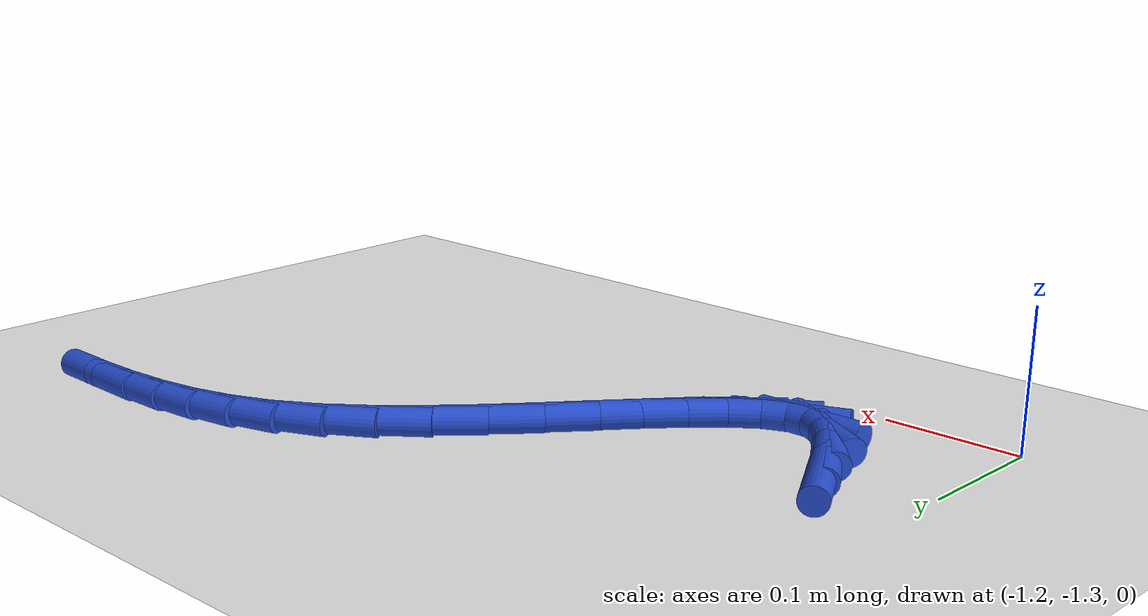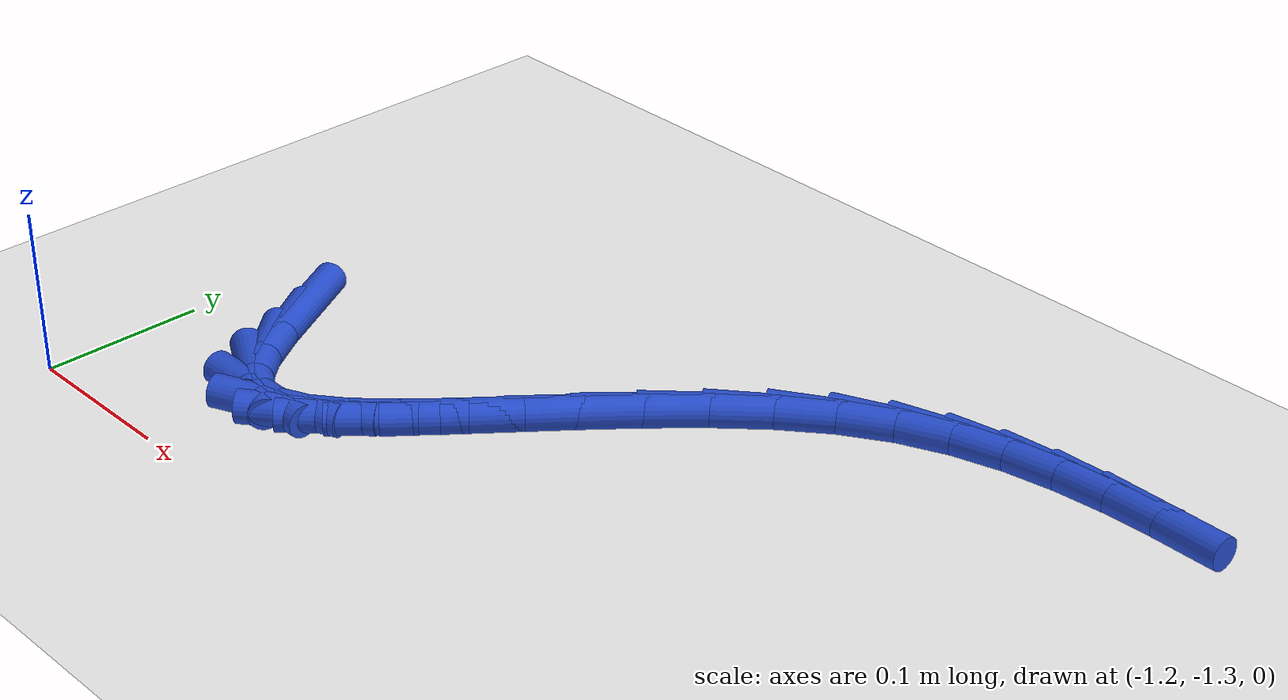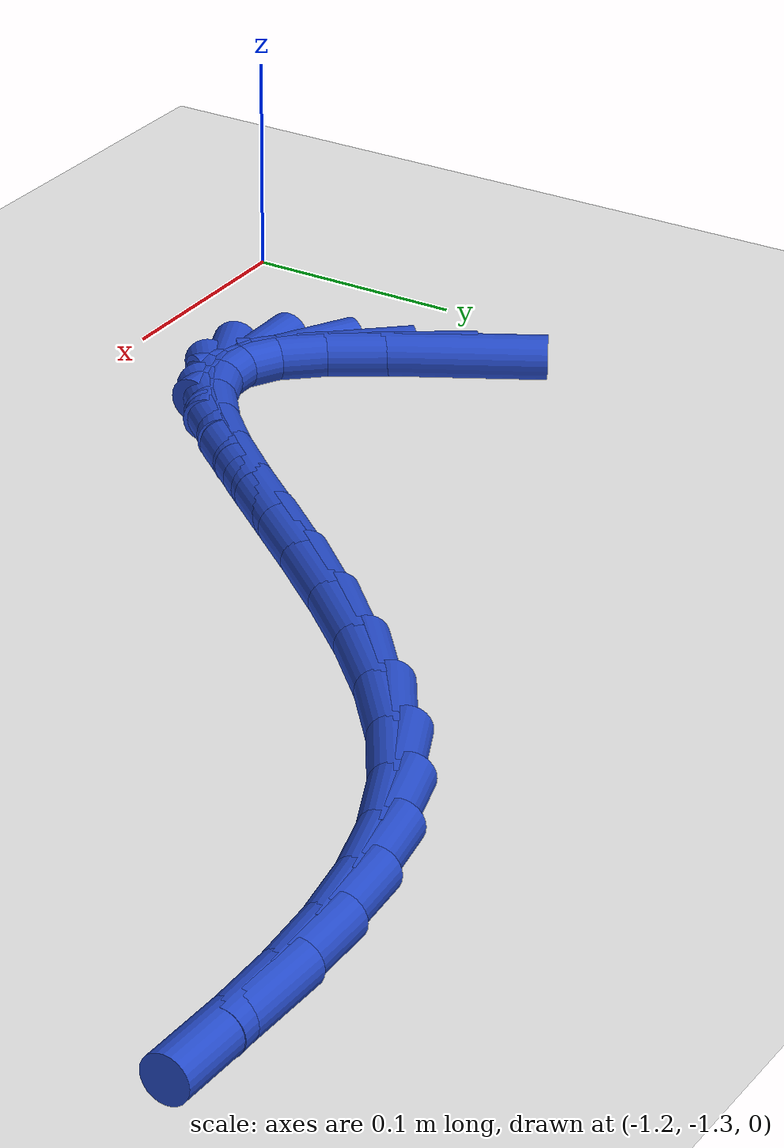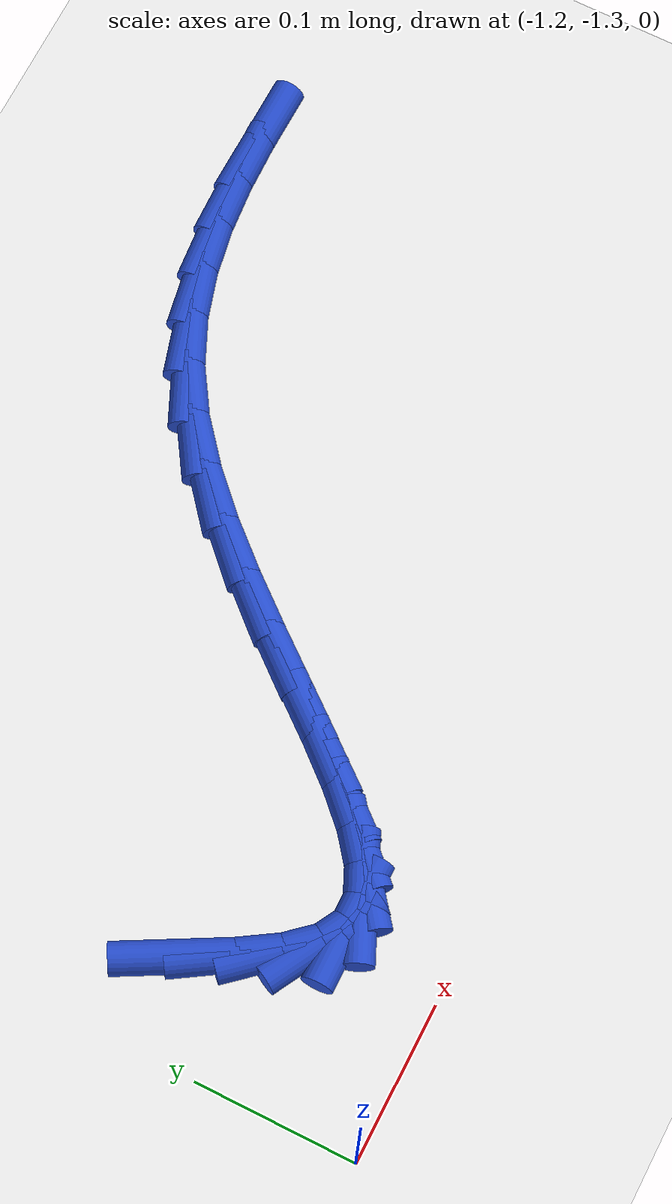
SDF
<sdf version="1.6">
 <world name="default">
  <model name="ground_plane">
   <static>1</static>
   <link name="link">
    <collision name="collision">
     <geometry><plane><normal>0 0 1</normal><size>100 100</size></plane></geometry>
     <surface><friction><ode><mu>100</mu><mu2>50</mu2></ode></friction></surface>
    </collision>
    <visual name="visual">
     <cast_shadows>0</cast_shadows>
     <geometry><plane><normal>0 0 1</normal><size>100 100</size></plane></geometry>
     <material>
      <script><uri>file://media/materials/scripts/gazebo.material</uri><name>Gazebo/WhiteGlow</name></script>
     </material>
    </visual>
   </link>
  </model>
  <model name="line">
   <link name="link_193">
    <pose>-1.1429890617071052 -1.16061340525731 0.01 0 1.57 -1.0657319433157604</pose>
    <collision name="collision">
     <geometry><cylinder><radius>0.01</radius><length>0.08</length></cylinder></geometry>
    </collision>
    <visual name="visual">
     <material>
      <script><name>Gazebo/Blue</name><uri>file://media/materials/scripts/gazebo.material</uri></script>
     </material>
     <geometry><cylinder><radius>0.01</radius><length>0.08</length></cylinder></geometry>
    </visual>
   </link>
   <link name="link_194">
    <pose>-1.1279853823475854 -1.1877499056428367 0.01 0 1.57 -1.000812917307462</pose>
    <collision name="collision">
     <geometry><cylinder><radius>0.01</radius><length>0.08</length></cylinder></geometry>
    </collision>
    <visual name="visual">
     <material>
      <script><name>Gazebo/Blue</name><uri>file://media/materials/scripts/gazebo.material</uri></script>
     </material>
     <geometry><cylinder><radius>0.01</radius><length>0.08</length></cylinder></geometry>
    </visual>
   </link>
   <link name="link_195">
    <pose>-1.1132590144612546 -1.2107259247175597 0.01 0 1.57 -0.8426996457259167</pose>
    <collision name="collision">
     <geometry><cylinder><radius>0.01</radius><length>0.08</length></cylinder></geometry>
    </collision>
    <visual name="visual">
     <material>
      <script><name>Gazebo/Blue</name><uri>file://media/materials/scripts/gazebo.material</uri></script>
     </material>
     <geometry><cylinder><radius>0.01</radius><length>0.08</length></cylinder></geometry>
    </visual>
   </link>
   <link name="link_196">
    <pose>-1.0983686118963143 -1.22742864398564 0.01 0 1.57 -0.497548517801257</pose>
    <collision name="collision">
     <geometry><cylinder><radius>0.01</radius><length>0.08</length></cylinder></geometry>
    </collision>
    <visual name="visual">
     <material>
      <script><name>Gazebo/Blue</name><uri>file://media/materials/scripts/gazebo.material</uri></script>
     </material>
     <geometry><cylinder><radius>0.01</radius><length>0.08</length></cylinder></geometry>
    </visual>
   </link>
   <link name="link_197">
    <pose>-1.0828841029287282 -1.2358386465889857 0.01 0 1.57 0.013273784595244706</pose>
    <collision name="collision">
     <geometry><cylinder><radius>0.01</radius><length>0.08</length></cylinder></geometry>
    </collision>
    <visual name="visual">
     <material>
      <script><name>Gazebo/Blue</name><uri>file://media/materials/scripts/gazebo.material</uri></script>
     </material>
     <geometry><cylinder><radius>0.01</radius><length>0.08</length></cylinder></geometry>
    </visual>
   </link>
   <link name="link_198">
    <pose>-1.0665788935214402 -1.235622202039353 0.01 0 1.57 0.42210818053192</pose>
    <collision name="collision">
     <geometry><cylinder><radius>0.01</radius><length>0.08</length></cylinder></geometry>
    </collision>
    <visual name="visual">
     <material>
      <script><name>Gazebo/Blue</name><uri>file://media/materials/scripts/gazebo.material</uri></script>
     </material>
     <geometry><cylinder><radius>0.01</radius><length>0.08</length></cylinder></geometry>
    </visual>
   </link>
   <link name="link_199">
    <pose>-1.0494029694102254 -1.227908433690976 0.01 0 1.57 0.6597606124652435</pose>
    <collision name="collision">
     <geometry><cylinder><radius>0.01</radius><length>0.08</length></cylinder></geometry>
    </collision>
    <visual name="visual">
     <material>
      <script><name>Gazebo/Blue</name><uri>file://media/materials/scripts/gazebo.material</uri></script>
     </material>
     <geometry><cylinder><radius>0.01</radius><length>0.08</length></cylinder></geometry>
    </visual>
   </link>
   <link name="link_200">
    <pose>-1.0313121772524165 -1.213875018996232 0.01 0 1.57 0.788683158620173</pose>
    <collision name="collision">
     <geometry><cylinder><radius>0.01</radius><length>0.08</length></cylinder></geometry>
    </collision>
    <visual name="visual">
     <material>
      <script><name>Gazebo/Blue</name><uri>file://media/materials/scripts/gazebo.material</uri></script>
     </material>
     <geometry><cylinder><radius>0.01</radius><length>0.08</length></cylinder></geometry>
    </visual>
   </link>
   <link name="link_201">
    <pose>-1.0122623637053465 -1.1946996354074992 0.01 0 1.57 0.856740099656835</pose>
    <collision name="collision">
     <geometry><cylinder><radius>0.01</radius><length>0.08</length></cylinder></geometry>
    </collision>
    <visual name="visual">
     <material>
      <script><name>Gazebo/Blue</name><uri>file://media/materials/scripts/gazebo.material</uri></script>
     </material>
     <geometry><cylinder><radius>0.01</radius><length>0.08</length></cylinder></geometry>
    </visual>
   </link>
   <link name="link_202">
    <pose>-0.9922093754263478 -1.1715599603771552 0.01 0 1.57 0.8876623520143261</pose>
    <collision name="collision">
     <geometry><cylinder><radius>0.01</radius><length>0.08</length></cylinder></geometry>
    </collision>
    <visual name="visual">
     <material>
      <script><name>Gazebo/Blue</name><uri>file://media/materials/scripts/gazebo.material</uri></script>
     </material>
     <geometry><cylinder><radius>0.01</radius><length>0.08</length></cylinder></geometry>
    </visual>
   </link>
   <link name="link_203">
    <pose>-0.9711090590727537 -1.1456336713575783 0.01 0 1.57 0.8924426347077464</pose>
    <collision name="collision">
     <geometry><cylinder><radius>0.01</radius><length>0.08</length></cylinder></geometry>
    </collision>
    <visual name="visual">
     <material>
      <script><name>Gazebo/Blue</name><uri>file://media/materials/scripts/gazebo.material</uri></script>
     </material>
     <geometry><cylinder><radius>0.01</radius><length>0.08</length></cylinder></geometry>
    </visual>
   </link>
   <link name="link_204">
    <pose>-0.9489172613018957 -1.1180984458011456 0.01 0 1.57 0.8755933698337915</pose>
    <collision name="collision">
     <geometry><cylinder><radius>0.01</radius><length>0.08</length></cylinder></geometry>
    </collision>
    <visual name="visual">
     <material>
      <script><name>Gazebo/Blue</name><uri>file://media/materials/scripts/gazebo.material</uri></script>
     </material>
     <geometry><cylinder><radius>0.01</radius><length>0.08</length></cylinder></geometry>
    </visual>
   </link>
   <link name="link_205">
    <pose>-0.925589828771108 -1.0901319611602356 0.01 0 1.57 0.837795315385814</pose>
    <collision name="collision">
     <geometry><cylinder><radius>0.01</radius><length>0.08</length></cylinder></geometry>
    </collision>
    <visual name="visual">
     <material>
      <script><name>Gazebo/Blue</name><uri>file://media/materials/scripts/gazebo.material</uri></script>
     </material>
     <geometry><cylinder><radius>0.01</radius><length>0.08</length></cylinder></geometry>
    </visual>
   </link>
   <link name="link_206">
    <pose>-0.901082608137723 -1.0629118948872271 0.01 0 1.57 0.7768697383576941</pose>
    <collision name="collision">
     <geometry><cylinder><radius>0.01</radius><length>0.08</length></cylinder></geometry>
    </collision>
    <visual name="visual">
     <material>
      <script><name>Gazebo/Blue</name><uri>file://media/materials/scripts/gazebo.material</uri></script>
     </material>
     <geometry><cylinder><radius>0.01</radius><length>0.08</length></cylinder></geometry>
    </visual>
   </link>
   <link name="link_207">
    <pose>-0.8753514460590731 -1.0376159244344967 0.01 0 1.57 0.6880302237239019</pose>
    <collision name="collision">
     <geometry><cylinder><radius>0.01</radius><length>0.08</length></cylinder></geometry>
    </collision>
    <visual name="visual">
     <material>
      <script><name>Gazebo/Blue</name><uri>file://media/materials/scripts/gazebo.material</uri></script>
     </material>
     <geometry><cylinder><radius>0.01</radius><length>0.08</length></cylinder></geometry>
    </visual>
   </link>
   <link name="link_208">
    <pose>-0.8483521891924914 -1.0154217272544228 0.01 0 1.57 0.5645151642309291</pose>
    <collision name="collision">
     <geometry><cylinder><radius>0.01</radius><length>0.08</length></cylinder></geometry>
    </collision>
    <visual name="visual">
     <material>
      <script><name>Gazebo/Blue</name><uri>file://media/materials/scripts/gazebo.material</uri></script>
     </material>
     <geometry><cylinder><radius>0.01</radius><length>0.08</length></cylinder></geometry>
    </visual>
   </link>
   <link name="link_209">
    <pose>-0.8200429527732189 -0.9974946950923241 0.01 0 1.57 0.4202300622547253</pose>
    <collision name="collision">
     <geometry><cylinder><radius>0.01</radius><length>0.08</length></cylinder></geometry>
    </collision>
    <visual name="visual">
     <material>
      <script><name>Gazebo/Blue</name><uri>file://media/materials/scripts/gazebo.material</uri></script>
     </material>
     <geometry><cylinder><radius>0.01</radius><length>0.08</length></cylinder></geometry>
    </visual>
   </link>
   <link name="link_210">
    <pose>-0.790511412865774 -0.984298570264257 0.01 0 1.57 0.2892992450537658</pose>
    <collision name="collision">
     <geometry><cylinder><radius>0.01</radius><length>0.08</length></cylinder></geometry>
    </collision>
    <visual name="visual">
     <material>
      <script><name>Gazebo/Blue</name><uri>file://media/materials/scripts/gazebo.material</uri></script>
     </material>
     <geometry><cylinder><radius>0.01</radius><length>0.08</length></cylinder></geometry>
    </visual>
   </link>
   <link name="link_211">
    <pose>-0.7600423843594475 -0.9752294703677568 0.01 0 1.57 0.17923166058953358</pose>
    <collision name="collision">
     <geometry><cylinder><radius>0.01</radius><length>0.08</length></cylinder></geometry>
    </collision>
    <visual name="visual">
     <material>
      <script><name>Gazebo/Blue</name><uri>file://media/materials/scripts/gazebo.material</uri></script>
     </material>
     <geometry><cylinder><radius>0.01</radius><length>0.08</length></cylinder></geometry>
    </visual>
   </link>
   <link name="link_212">
    <pose>-0.7289372173374918 -0.9695939650291808 0.01 0 1.57 0.09183211605686431</pose>
    <collision name="collision">
     <geometry><cylinder><radius>0.01</radius><length>0.08</length></cylinder></geometry>
    </collision>
    <visual name="visual">
     <material>
      <script><name>Gazebo/Blue</name><uri>file://media/materials/scripts/gazebo.material</uri></script>
     </material>
     <geometry><cylinder><radius>0.01</radius><length>0.08</length></cylinder></geometry>
    </visual>
   </link>
   <link name="link_213">
    <pose>-0.6974972618831592 -0.9666986238748869 0.01 0 1.57 0.026956158479227547</pose>
    <collision name="collision">
     <geometry><cylinder><radius>0.01</radius><length>0.08</length></cylinder></geometry>
    </collision>
    <visual name="visual">
     <material>
      <script><name>Gazebo/Blue</name><uri>file://media/materials/scripts/gazebo.material</uri></script>
     </material>
     <geometry><cylinder><radius>0.01</radius><length>0.08</length></cylinder></geometry>
    </visual>
   </link>
   <link name="link_214">
    <pose>-0.666023868079704 -0.9658500165312323 0.01 0 1.57 -0.01617190510450327</pose>
    <collision name="collision">
     <geometry><cylinder><radius>0.01</radius><length>0.08</length></cylinder></geometry>
    </collision>
    <visual name="visual">
     <material>
      <script><name>Gazebo/Blue</name><uri>file://media/materials/scripts/gazebo.material</uri></script>
     </material>
     <geometry><cylinder><radius>0.01</radius><length>0.08</length></cylinder></geometry>
    </visual>
   </link>
  </model>
 </world>
</sdf>
